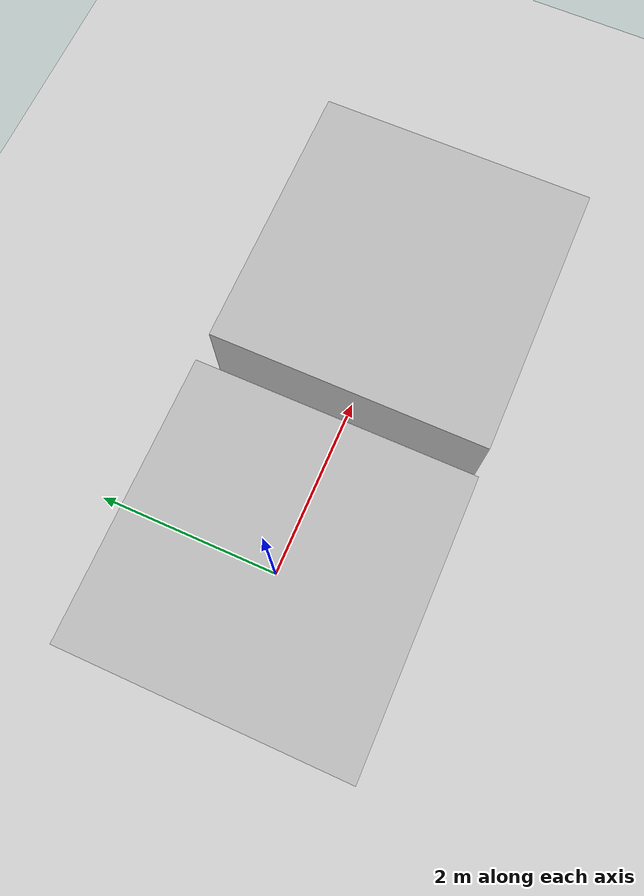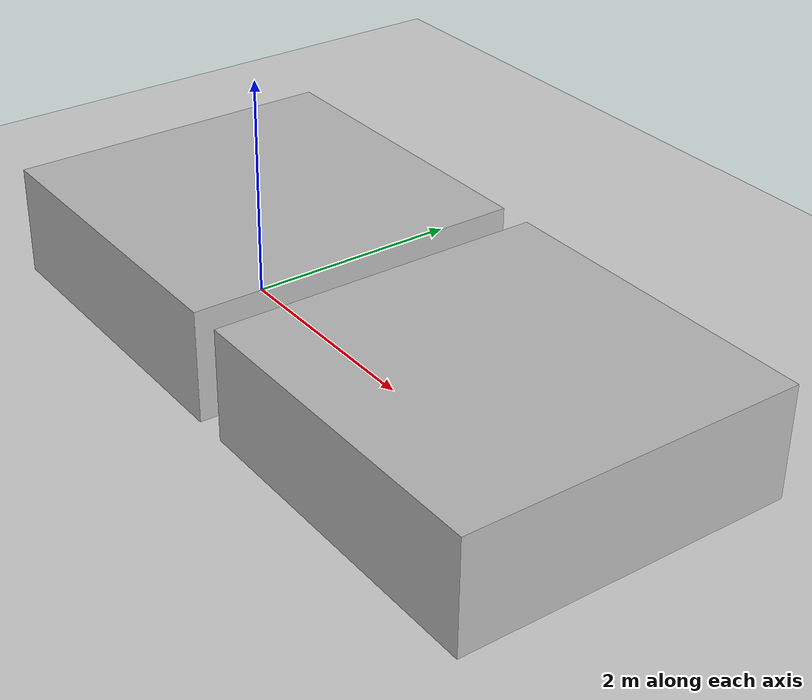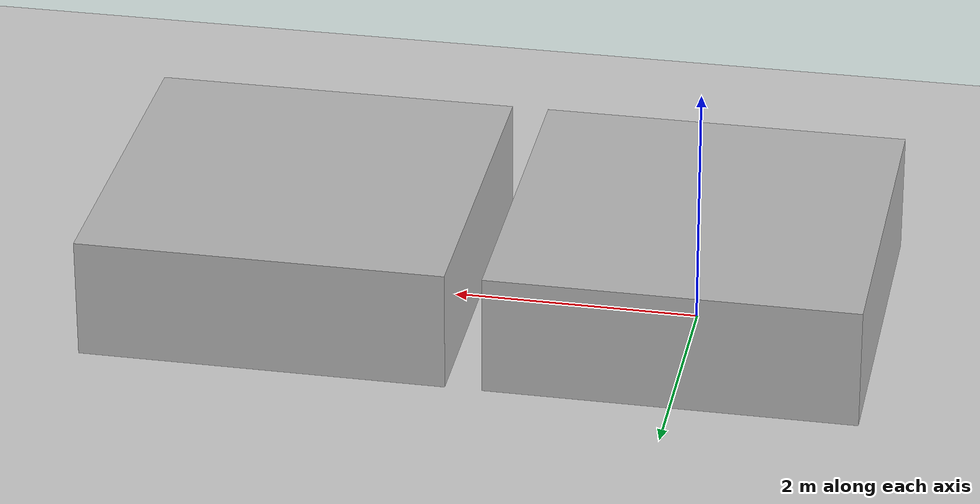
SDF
<?xml version="1.0" ?>
<sdf version="1.4">
	<world name="default">
		<scene>
			<shadows>false</shadows>
		</scene>
		<gui>
			<camera name="camera">
				<pose>3.0 0.0 1.0 0.0 0.3 3.14</pose>
			</camera>
		</gui>
		<physics type="ode">
			<gravity>0 0 -9.81</gravity>
			<real_time_update_rate>2000</real_time_update_rate>
			<max_step_size>0.0005</max_step_size>
			<ode>
				<solver>
					<type>quick</type>
					<iters>70</iters>
					<sor>1.2</sor>
				</solver>
				<constraints>
 					<cfm>0.0</cfm>
					<erp>0.2</erp>
					<contact_max_correcting_vel>100.0</contact_max_correcting_vel>
					<contact_surface_layer>0.001</contact_surface_layer>
				</constraints>
			</ode>
		</physics>
		<include>
			<uri>model://ground_plane</uri>
		</include>
		<include>
			<uri>model://sun</uri>
		</include>

		<model name="box1">
			<pose>0 0 0.5 0 0 0</pose>

			<static>true</static>
			<link name="link">
				<visual name="visual0">
					<geometry>
						<box>
							<size>3 3 1</size>
						</box>
					</geometry>
				</visual>
				<collision name="collision0">
					<geometry>
						<box>
							<size>3 3 1</size>
						</box>
					</geometry>
				</collision>
			</link>
		</model>

		<model name="box2">
			<pose>3.3 0 0.5 0 0 0</pose>

			<static>true</static>
			<link name="link">
				<visual name="visual0">
					<geometry>
						<box>
							<size>3 3 1</size>
						</box>
					</geometry>
				</visual>
				<collision name="collision0">
					<geometry>
						<box>
							<size>3 3 1</size>
						</box>
					</geometry>
				</collision>
			</link>
		</model>

	</world>
</sdf>
